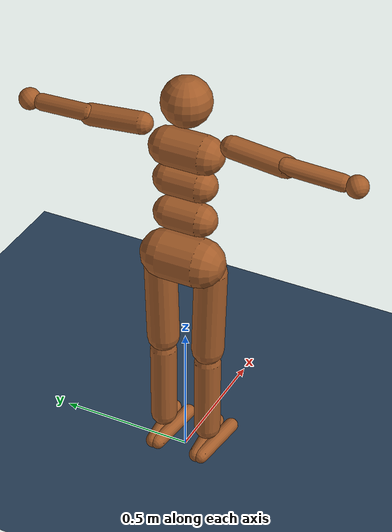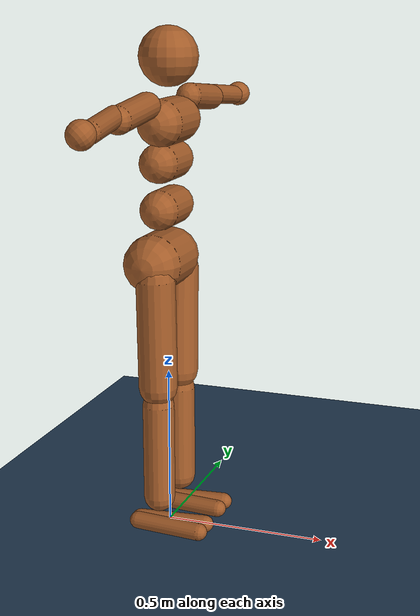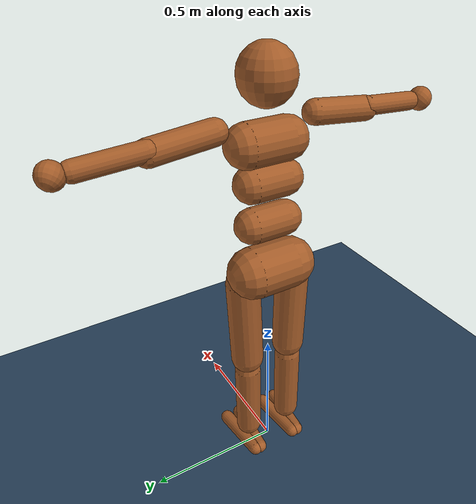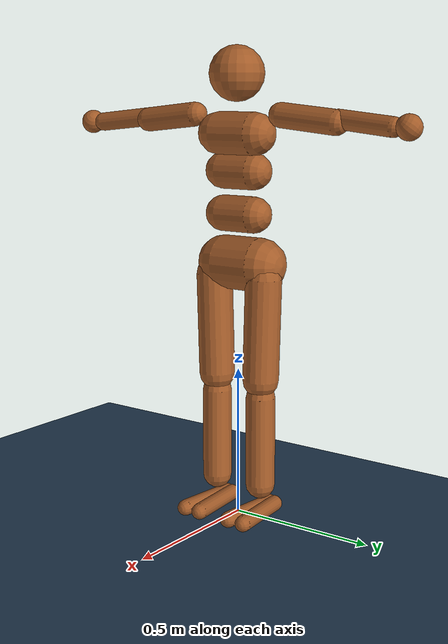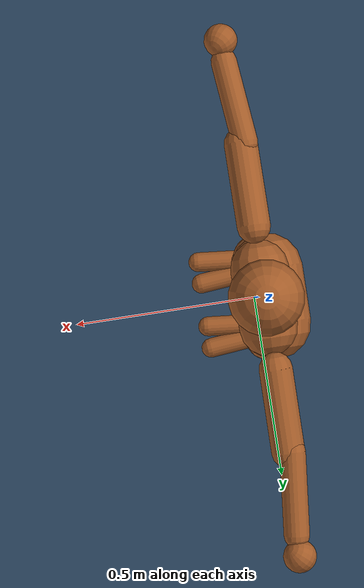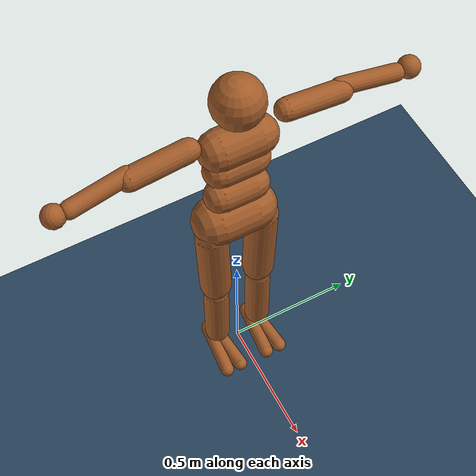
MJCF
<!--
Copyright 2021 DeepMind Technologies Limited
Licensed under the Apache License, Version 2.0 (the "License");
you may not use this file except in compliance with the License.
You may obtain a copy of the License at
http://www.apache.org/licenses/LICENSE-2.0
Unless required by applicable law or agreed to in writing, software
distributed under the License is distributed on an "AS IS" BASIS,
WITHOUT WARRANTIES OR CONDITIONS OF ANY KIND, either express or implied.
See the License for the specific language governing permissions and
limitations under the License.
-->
<mujoco model="Humanoid">
  <option timestep="0.009333" iterations="2" ls_iterations="4">
    <flag eulerdamp="disable"/>
  </option>

  <visual>
    <map force="0.1" zfar="30"/>
    <rgba haze="0.15 0.25 0.35 1"/>
    <global offwidth="2560" offheight="1440" elevation="-20" azimuth="120"/>
  </visual>

  <statistic center="0 0 0.7"/>

  <asset>
    <texture type="skybox" builtin="gradient" rgb1=".3 .5 .7" rgb2="0 0 0" width="32" height="512"/>
    <texture name="body" type="cube" builtin="flat" mark="cross" width="128" height="128" rgb1="0.8 0.6 0.4" rgb2="0.8 0.6 0.4" markrgb="1 1 1" random="0.01"/>
    <material name="body" texture="body" texuniform="true" rgba="0.8 0.6 .4 1"/>
    <texture name="grid" type="2d" builtin="checker" width="512" height="512" rgb1=".1 .2 .3" rgb2=".2 .3 .4"/>
    <material name="grid" texture="grid" texrepeat="1 1" texuniform="true" reflectance=".2"/>
  </asset>

  <default>
    <motor ctrlrange="-1 1" ctrllimited="false"/>
    <default class="body">

      <!-- geoms -->
      <!-- TODO(robotics-simulation): support condim=1 for humanoid capsules. -->
      <geom type="capsule" condim="3" friction=".7" solimp=".9 .99 .003" solref=".015 1" material="body" contype="1" conaffinity="1"/>
      <default class="thigh">
        <geom size=".06"/>
      </default>
      <default class="shin">
        <geom fromto="0 0 0 0 0 -.3"  size=".049"/>
      </default>
      <default class="foot">
        <geom size=".027"/>
        <default class="foot1">
          <geom fromto="-.07 -.01 0 .14 -.03 0"/>
        </default>
        <default class="foot2">
          <geom fromto="-.07 .01 0 .14  .03 0"/>
        </default>
      </default>
      <default class="arm_upper">
        <geom size=".04"/>
      </default>
      <default class="arm_lower">
        <geom size=".031"/>
      </default>
      <default class="hand">
        <geom type="sphere" size=".04"/>
      </default>

      <!-- joints -->
      <joint type="hinge" damping=".2" stiffness="1" armature=".01" limited="false" solimplimit="0 .99 .01"/>
      <default class="joint_big">
        <joint damping="0" stiffness="0"/>
        <default class="hip_x">
          <joint range="-150 150" limited="false"/>
        </default>
        <default class="hip_z">
          <joint range="-150 150" limited="false"/>
        </default>
        <default class="hip_y">
          <joint axis="0 1 0" range="-150 150" limited="false"/>
        </default>
        <default class="joint_big_stiff">
          <joint stiffness="20"/>
        </default>
      </default>
      <default class="knee">
        <joint pos="0 0 .02" axis="0 1 0" range="-160 2"/>
      </default>
      <default class="ankle">
        <joint range="-50 50"/>
        <default class="ankle_y">
          <joint pos="0 0 .08" axis="0 1 0" stiffness="6"/>
        </default>
        <default class="ankle_x">
          <joint pos="0 0 .04" stiffness="3"/>
        </default>
      </default>
      <default class="shoulder">
        <joint range="-90 90"/>
      </default>
      <default class="elbow">
        <joint range="0 150" stiffness="0"/>
      </default>
    </default>
  </default>

  <worldbody>
    <geom name="floor" size="0 0 .05" type="plane" material="grid" condim="3"/>
    <light name="spotlight" mode="targetbodycom" target="torso" diffuse=".8 .8 .8" specular="0.3 0.3 0.3" pos="0 -6 4" cutoff="30"/>

    <body name="pelvis" pos="0 0 0.857" childclass="body">
        <freejoint name="root"/>
        <geom name="butt" fromto="-.02 -.07 0 -.02 .07 0" size=".09"/>

        <body name="waist_lower" pos="0 0 .165">
            <geom name="waist_lower" fromto="0 -.06 0 0 .06 0" size=".06"/>
            <joint name="abdomen_z" pos="0 0 -.165" axis="0 0 1" range="-45 45" class="joint_big_stiff"/>
            <joint name="abdomen_y" pos="0 0 -.165" axis="0 1 0" range="-20 75" class="joint_big"/>

            <body name="torso" pos="0.01 0 0.26">
                <light name="top" pos="0 0 2" mode="trackcom"/>
                <camera name="back" pos="-3 0 1" xyaxes="0 -1 0 1 0 2" mode="trackcom"/>
                <camera name="side" pos="0 -3 1" xyaxes="1 0 0 0 1 2" mode="trackcom"/>
                <joint name="torso_y" pos="0 0 -.26" axis="0 1 0" range="-35 35" class="joint_big_stiff"/>
                <geom name="torso" fromto="0 -.07 0 0 .07 0" size=".07"/>
                <geom name="waist_upper" fromto="-.01 -.06 -.12 -.01 .06 -.12" size=".06"/>
                <body name="head" pos="0 0 .19">
                    <geom name="head" type="sphere" size=".09"/>
                    <camera name="egocentric" pos=".09 0 0" xyaxes="0 -1 0 .1 0 1" fovy="80"/>
                </body>
                <body name="upper_arm_right" pos="0 -.17 .06">
                    <joint name="shoulder1_right" axis="1 0 0" class="shoulder"/>
                    <joint name="shoulder2_right" axis="0 1 0" class="shoulder"/>
                    <joint name="shoulder3_right" axis="0 0 1" class="shoulder"/>

                    <geom name="upper_arm_right" fromto="0 0 0 0 -.2 -0.02" class="arm_upper"/>
                    <body name="lower_arm_right" pos="0 -.2 -.02">
                        <joint name="elbow_right1" axis="1 0 0" class="elbow"/>
                        <joint name="elbow_right2" axis="0 1 0" class="elbow"/>
                        <joint name="elbow_right3" axis="0 0 1" class="elbow"/>
                        <geom name="lower_arm_right" fromto="-.01 0 .01 .01 -.2 -.01" class="arm_lower"/>
                        <body name="hand_right" pos=".01 -.25 -.01">
                            <geom name="hand_right" zaxis="1 1 1" class="hand"/>
                        </body>
                    </body>
                </body>
                <body name="upper_arm_left" pos="0 .17 .06">
                    <joint name="shoulder1_left" axis="1 0 0" class="shoulder"/>
                    <joint name="shoulder2_left" axis="0 1 0" class="shoulder"/>
                    <joint name="shoulder3_left" axis="0 0 1" class="shoulder"/>
                    <geom name="upper_arm_left" fromto="0 0 0 0 .2 -.02" class="arm_upper"/>
                    <body name="lower_arm_left" pos="0 .2 -.02">
                        <joint name="elbow_left1" axis="1 0 0" class="elbow"/>
                        <joint name="elbow_left2" axis="0 1 0" class="elbow"/>
                        <joint name="elbow_left3" axis="0 0 1" class="elbow"/>
                        <geom name="lower_arm_left" fromto="-.01 0 .01 .01 .2 -.01" class="arm_lower"/>
                        <body name="hand_left" pos=".01 .25 -.01">
                            <geom name="hand_left" zaxis="1 -1 1" class="hand"/>
                        </body>
                    </body>
                </body>
            </body>
        </body>

        <body name="thigh_right" pos="0 -.1 -.04">
            <joint name="hip_x_right" axis="1 0 0" class="hip_x"/>
            <joint name="hip_y_right" axis="0 1 0" class="hip_y"/>
            <joint name="hip_z_right" axis="0 0 1" class="hip_z"/>
            <geom name="thigh_right" fromto="0 0 0 0 .01 -.34" class="thigh"/>
            <body name="shin_right" pos="0 .01 -.4">
                <joint name="knee_right" class="knee"/>
                <geom name="shin_right" class="shin"/>
                <body name="foot_right" pos="0 0 -.39">
                    <joint name="ankle_y_right" class="ankle_y"/>
                    <joint name="ankle_x_right" class="ankle_x" axis="1 0 .5"/>
                    <geom name="foot1_right" class="foot1"/>
                    <geom name="foot2_right" class="foot2"/>
                </body>
            </body>
        </body>

        <body name="thigh_left" pos="0 .1 -.04">
            <joint name="hip_x_left" axis="1 0 0" class="hip_x"/>
            <joint name="hip_y_left" axis="0 1 0" class="hip_y"/>
            <joint name="hip_z_left" axis="0 0 1" class="hip_z"/>
            <geom name="thigh_left" fromto="0 0 0 0 -.01 -.34" class="thigh"/>
            <body name="shin_left" pos="0 -.01 -.4">
                <joint name="knee_left" class="knee"/>
                <geom name="shin_left" fromto="0 0 0 0 0 -.3" class="shin"/>
                <body name="foot_left" pos="0 0 -.39">
                    <joint name="ankle_y_left" class="ankle_y"/>
                    <joint name="ankle_x_left" class="ankle_x" axis="-1 0 -.5"/>
                    <geom name="foot1_left" class="foot1"/>
                    <geom name="foot2_left" class="foot2"/>
                </body>
            </body>
        </body>
    </body>
  </worldbody>

  <contact>
    <exclude body1="pelvis" body2="thigh_right"/>
    <exclude body1="pelvis" body2="thigh_left"/>
    <exclude body1="thigh_left" body2="shin_left"/>
    <exclude body1="thigh_right" body2="shin_right"/>
    <exclude body1="shin_left" body2="foot_left"/>
    <exclude body1="shin_right" body2="foot_right"/>
    <exclude body1="pelvis" body2="waist_lower"/>
    <exclude body1="waist_lower" body2="torso"/>
    <exclude body1="torso" body2="upper_arm_left"/>
    <exclude body1="torso" body2="upper_arm_right"/>

    <exclude body1="upper_arm_left" body2="lower_arm_left"/>
    <exclude body1="lower_arm_left" body2="hand_left"/>

    <exclude body1="upper_arm_right" body2="lower_arm_right"/>
    <exclude body1="lower_arm_right" body2="hand_right"/>

  </contact>

  <actuator>
    <motor name="abdomen_y"       gear="40"  joint="abdomen_y"/>
    <motor name="abdomen_z"       gear="40"  joint="abdomen_z"/>
    <motor name="torso_y"       gear="40"  joint="torso_y"/>
    <motor name="hip_x_right"     gear="40"  joint="hip_x_right"/>
    <motor name="hip_y_right"     gear="120" joint="hip_y_right"/>
    <motor name="hip_z_right"     gear="40"  joint="hip_z_right"/>
    <motor name="knee_right"      gear="80"  joint="knee_right"/>
    <motor name="ankle_x_right"   gear="20"  joint="ankle_x_right"/>
    <motor name="ankle_y_right"   gear="20"  joint="ankle_y_right"/>
    <motor name="hip_x_left"      gear="40"  joint="hip_x_left"/>
    <motor name="hip_y_left"      gear="120" joint="hip_y_left"/>
    <motor name="hip_z_left"      gear="40"  joint="hip_z_left"/>
    <motor name="knee_left"       gear="80"  joint="knee_left"/>
    <motor name="ankle_x_left"    gear="20"  joint="ankle_x_left"/>
    <motor name="ankle_y_left"    gear="20"  joint="ankle_y_left"/>
    <motor name="shoulder1_right" gear="20"  joint="shoulder1_right"/>
    <motor name="shoulder2_right" gear="20"  joint="shoulder2_right"/>
    <motor name="shoulder3_right" gear="20"  joint="shoulder3_right"/>
    <motor name="elbow_right1"     gear="40"  joint="elbow_right1"/>
    <motor name="elbow_right2"     gear="40"  joint="elbow_right2"/>
    <motor name="elbow_right3"     gear="40"  joint="elbow_right3"/>

    <motor name="shoulder1_left"  gear="20"  joint="shoulder1_left"/>
    <motor name="shoulder2_left"  gear="20"  joint="shoulder2_left"/>
    <motor name="shoulder3_left"  gear="20"  joint="shoulder3_left"/>
    <motor name="elbow_left1"      gear="40"  joint="elbow_left1"/>
    <motor name="elbow_left2"      gear="40"  joint="elbow_left2"/>
    <motor name="elbow_left3"      gear="40"  joint="elbow_left3"/>
  </actuator>

  <keyframe>
    <!--
    The values below are split into rows for readibility:
      torso position
      torso orientation
      spinal
      right leg
      left leg
      arms
    -->
  </keyframe>
</mujoco>
